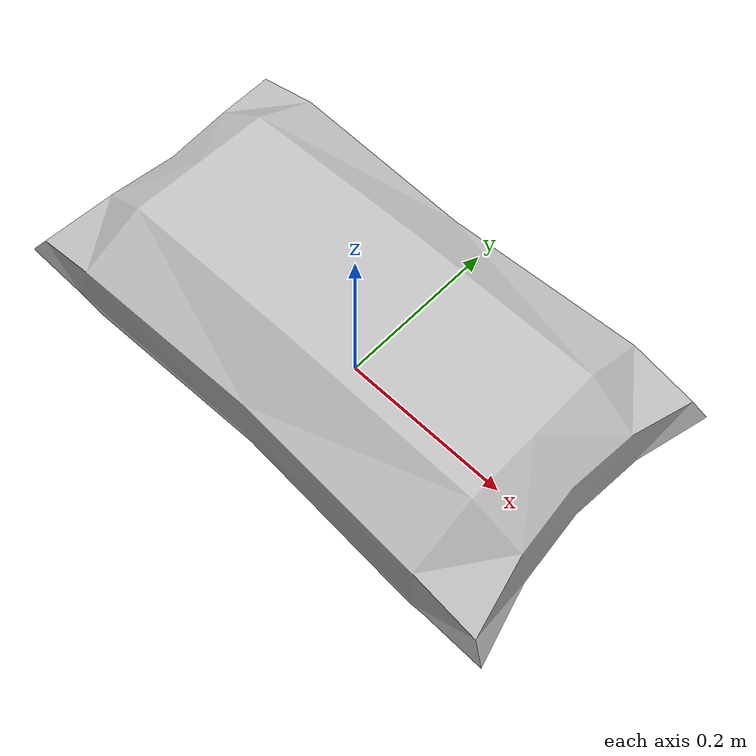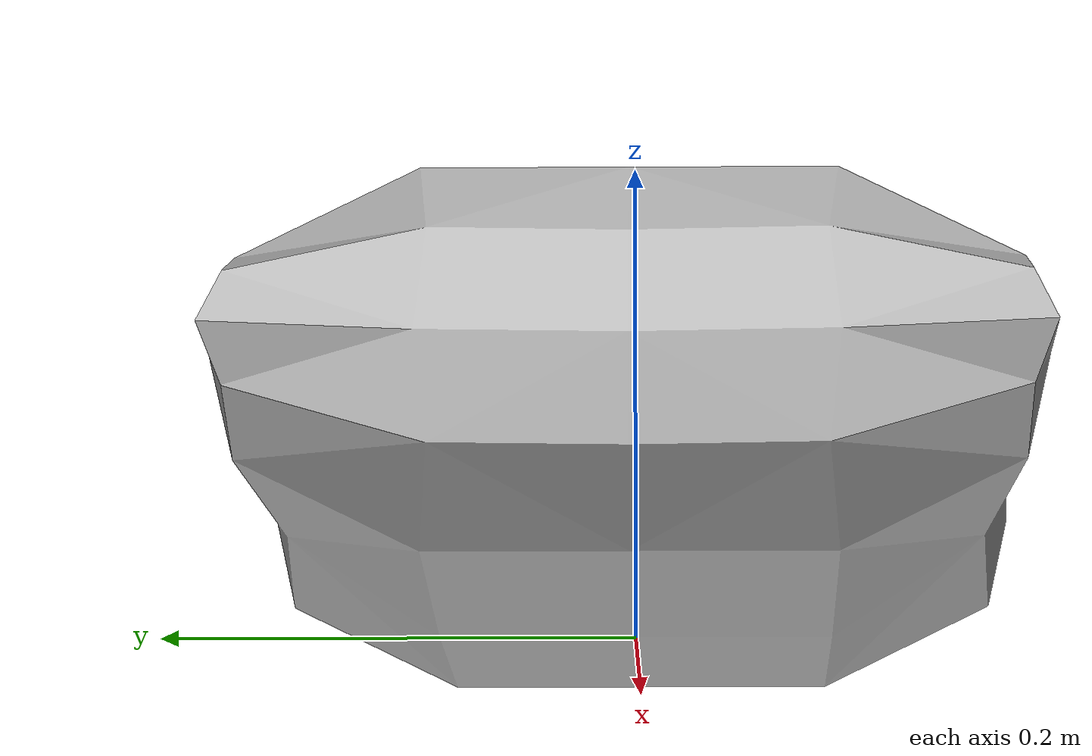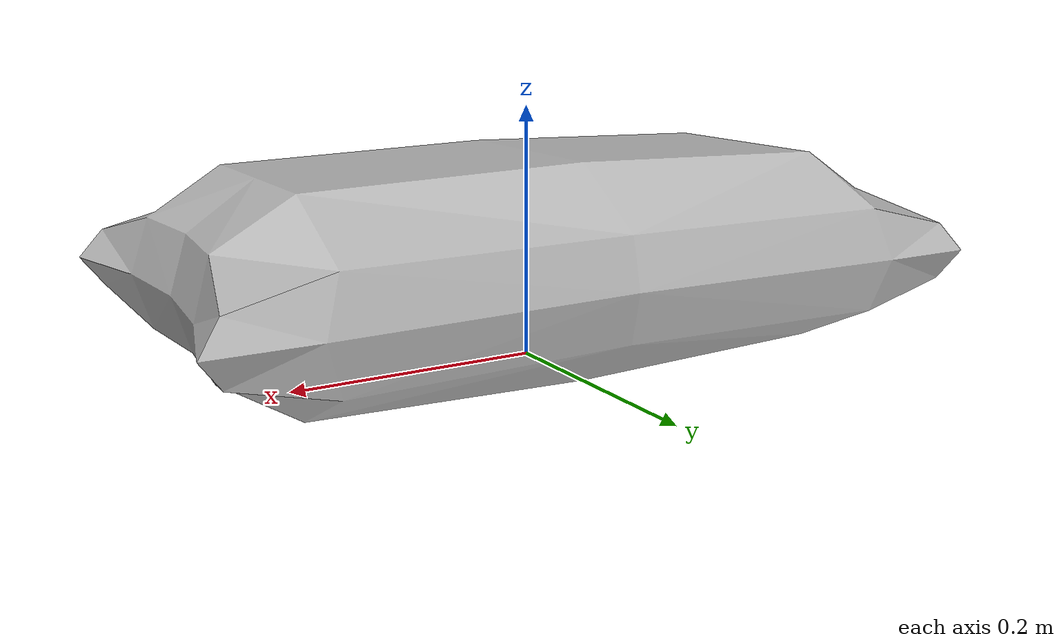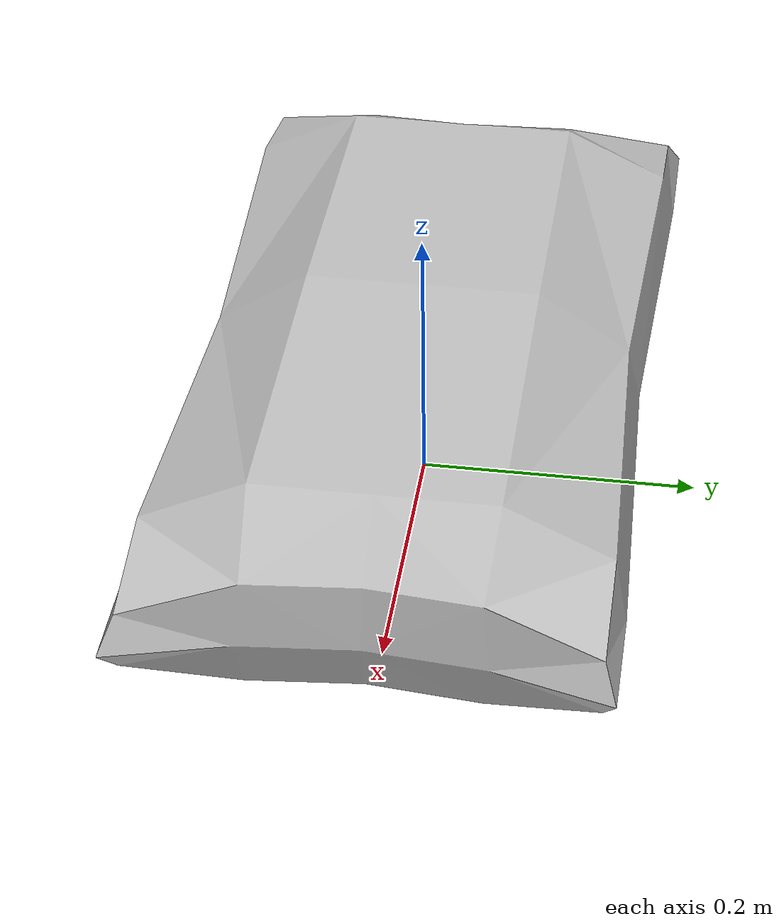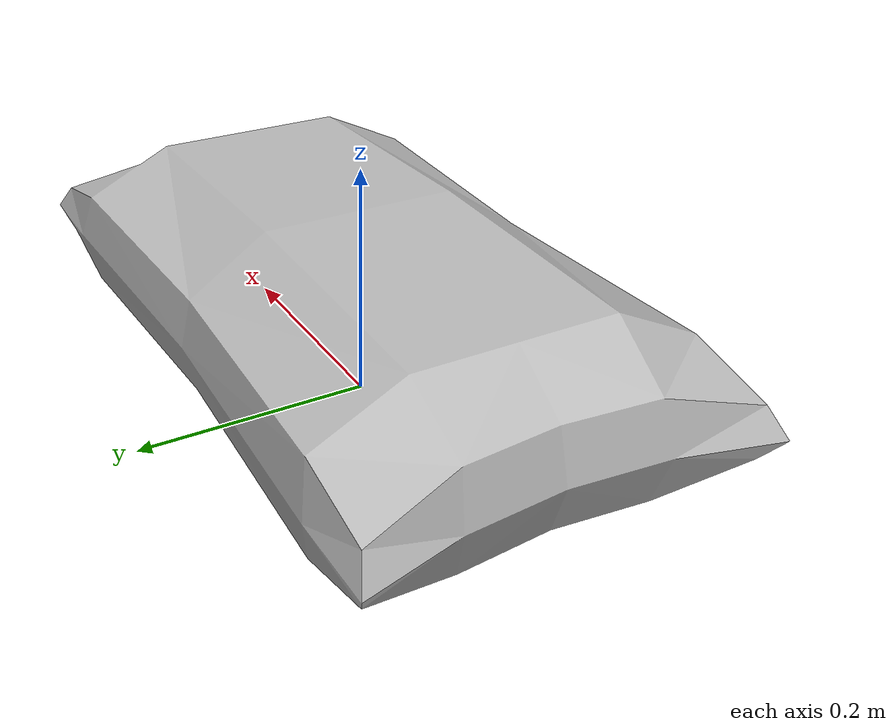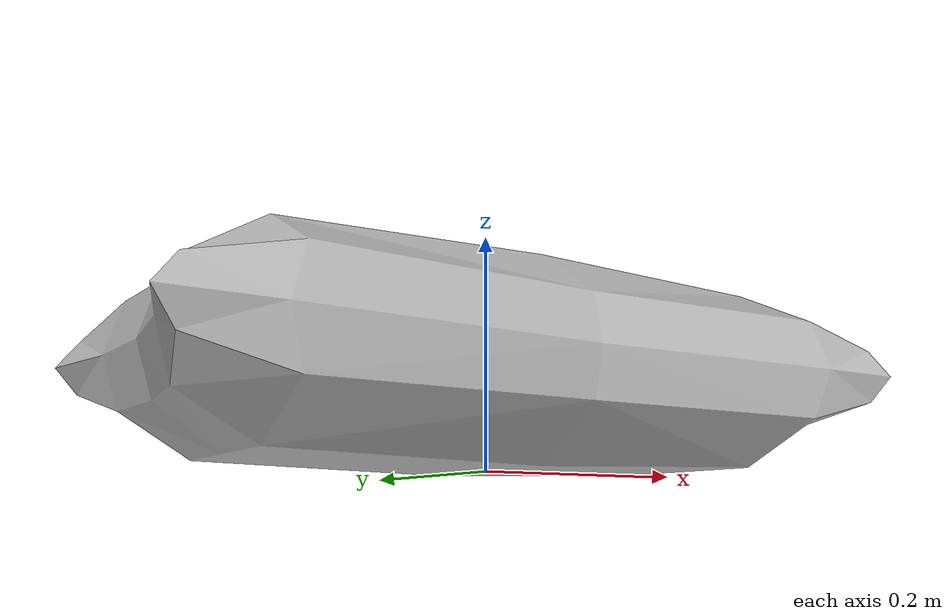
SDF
<?xml version='1.0' encoding='utf-8'?>
<sdf version="1.6">
  <model name="HospitalPillow">
   <static>true</static>
    <link name="body">
      <pose>0 0 0 0 0 0</pose>

      <visual name="visual">
        <geometry>
          <mesh>
            <uri>model://HospitalPillow/meshes/HospitalPillow.obj</uri>
          </mesh>
        </geometry>
      </visual>

      <collision name="collision">
        <geometry>
          <mesh>
            <uri>model://HospitalPillow/meshes/HospitalPillow.dae</uri>
          </mesh>
        </geometry>
      </collision>

    </link>
  </model>
</sdf>
